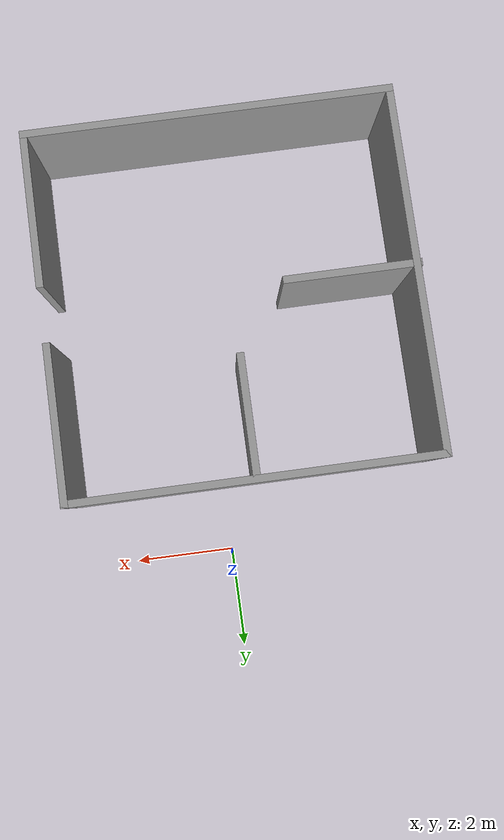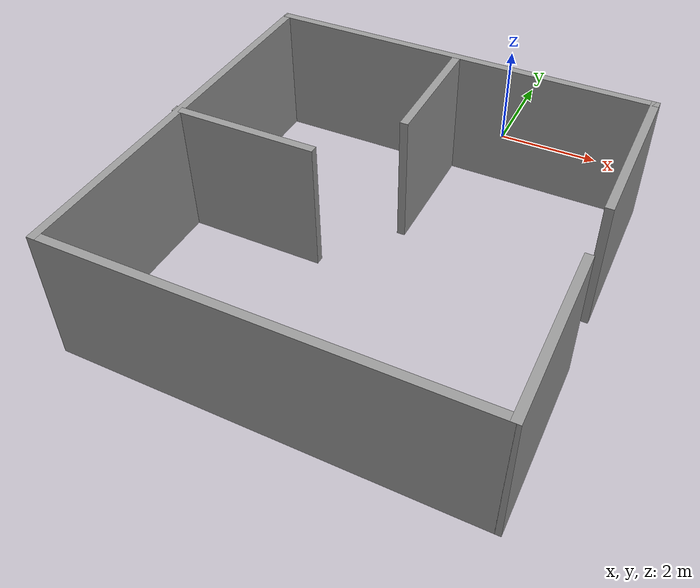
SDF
<?xml version='1.0'?>
<sdf version='1.7'>
  <model name='test_room_1'>
    <pose>-0.659935 -4.3925 0 0 -0 0</pose>
    <link name='Wall_27'>
      <collision name='Wall_27_Collision'>
        <geometry>
          <box>
            <size>7.5 0.15 2.5</size>
          </box>
        </geometry>
        <pose>0 0 1.25 0 -0 0</pose>
      </collision>
      <visual name='Wall_27_Visual'>
        <pose>0 0 1.25 0 -0 0</pose>
        <geometry>
          <box>
            <size>7.5 0.15 2.5</size>
          </box>
        </geometry>
        <material>
          <script>
            <uri>file://media/materials/scripts/gazebo.material</uri>
            <name>Gazebo/Grey</name>
          </script>
          <ambient>1 1 1 1</ambient>
        </material>
        <meta>
          <layer>0</layer>
        </meta>
      </visual>
      <pose>0.014935 -4.3175 0 0 -0 0</pose>
    </link>
    <link name='Wall_30'>
      <collision name='Wall_30_Collision'>
        <geometry>
          <box>
            <size>7.5 0.15 2.5</size>
          </box>
        </geometry>
        <pose>0 0 1.25 0 -0 0</pose>
      </collision>
      <visual name='Wall_30_Visual'>
        <pose>0 0 1.25 0 -0 0</pose>
        <geometry>
          <box>
            <size>7.5 0.15 2.5</size>
          </box>
        </geometry>
        <material>
          <script>
            <uri>file://media/materials/scripts/gazebo.material</uri>
            <name>Gazebo/Grey</name>
          </script>
          <ambient>1 1 1 1</ambient>
        </material>
        <meta>
          <layer>0</layer>
        </meta>
      </visual>
      <pose>-3.66006 -0.642499 0 0 -0 1.5708</pose>
    </link>
    <link name='Wall_43'>
      <collision name='Wall_43_Collision'>
        <geometry>
          <box>
            <size>7.5 0.15 2.5</size>
          </box>
        </geometry>
        <pose>0 0 1.25 0 -0 0</pose>
      </collision>
      <visual name='Wall_43_Visual'>
        <pose>0 0 1.25 0 -0 0</pose>
        <geometry>
          <box>
            <size>7.5 0.15 2.5</size>
          </box>
        </geometry>
        <material>
          <script>
            <uri>file://media/materials/scripts/gazebo.material</uri>
            <name>Gazebo/Grey</name>
          </script>
          <ambient>1 1 1 1</ambient>
        </material>
        <meta>
          <layer>0</layer>
        </meta>
      </visual>
      <pose>0.014935 3.0325 0 0 -0 0</pose>
    </link>
    <link name='Wall_44'>
      <collision name='Wall_44_Collision'>
        <geometry>
          <box>
            <size>3.19832 0.15 2.5</size>
          </box>
        </geometry>
        <pose>0 0 1.25 0 -0 0</pose>
      </collision>
      <visual name='Wall_44_Visual'>
        <pose>0 0 1.25 0 -0 0</pose>
        <geometry>
          <box>
            <size>3.19832 0.15 2.5</size>
          </box>
        </geometry>
        <material>
          <script>
            <uri>file://media/materials/scripts/gazebo.material</uri>
            <name>Gazebo/Grey</name>
          </script>
          <ambient>1 1 1 1</ambient>
        </material>
        <meta>
          <layer>0</layer>
        </meta>
      </visual>
      <pose>3.68997 1.50834 0 0 -0 -1.57078</pose>
    </link>
    <link name='Wall_46'>
      <collision name='Wall_46_Collision'>
        <geometry>
          <box>
            <size>3.20168 0.15 2.5</size>
          </box>
        </geometry>
        <pose>0 0 1.25 0 -0 0</pose>
      </collision>
      <visual name='Wall_46_Visual'>
        <pose>0 0 1.25 0 -0 0</pose>
        <geometry>
          <box>
            <size>3.20168 0.15 2.5</size>
          </box>
        </geometry>
        <material>
          <script>
            <uri>file://media/materials/scripts/gazebo.material</uri>
            <name>Gazebo/Grey</name>
          </script>
          <ambient>1 1 1 1</ambient>
        </material>
        <meta>
          <layer>0</layer>
        </meta>
      </visual>
      <pose>3.68997 -2.79166 0 0 -0 1.57078</pose>
    </link>
    <link name='Wall_48'>
      <collision name='Wall_48_Collision'>
        <geometry>
          <box>
            <size>2.5 0.15 2.5</size>
          </box>
        </geometry>
        <pose>0 0 1.25 0 -0 0</pose>
      </collision>
      <visual name='Wall_48_Visual'>
        <pose>0 0 1.25 0 -0 0</pose>
        <geometry>
          <box>
            <size>2.5 0.15 2.5</size>
          </box>
        </geometry>
        <material>
          <script>
            <uri>file://media/materials/scripts/gazebo.material</uri>
            <name>Gazebo/Grey</name>
          </script>
          <ambient>1 1 1 1</ambient>
        </material>
        <meta>
          <layer>0</layer>
        </meta>
      </visual>
      <pose>-1e-06 1.83918 0 0 -0 -1.5708</pose>
    </link>
    <link name='Wall_51'>
      <collision name='Wall_51_Collision'>
        <geometry>
          <box>
            <size>2.75 0.15 2.5</size>
          </box>
        </geometry>
        <pose>0 0 1.25 0 -0 0</pose>
      </collision>
      <visual name='Wall_51_Visual'>
        <pose>0 0 1.25 0 -0 0</pose>
        <geometry>
          <box>
            <size>2.75 0.15 2.5</size>
          </box>
        </geometry>
        <material>
          <script>
            <uri>file://media/materials/scripts/gazebo.material</uri>
            <name>Gazebo/Grey</name>
          </script>
          <ambient>1 1 1 1</ambient>
        </material>
        <meta>
          <layer>0</layer>
        </meta>
      </visual>
      <pose>-2.39 -0.715822 0 0 -0 0</pose>
    </link>
    <static>1</static>
  </model>
</sdf>
